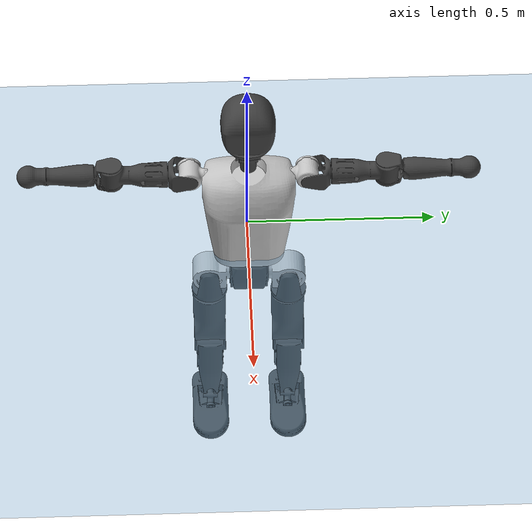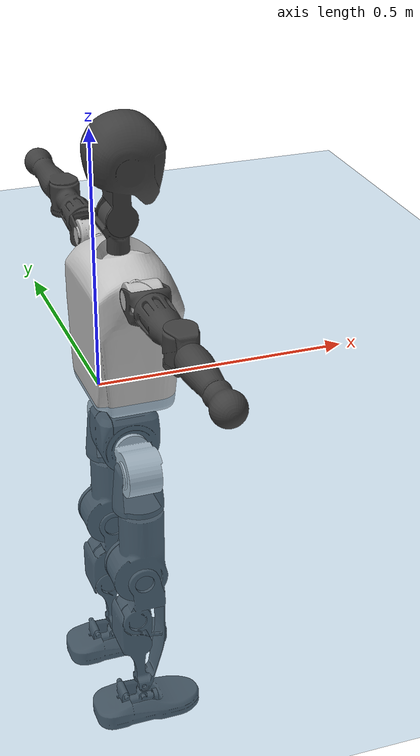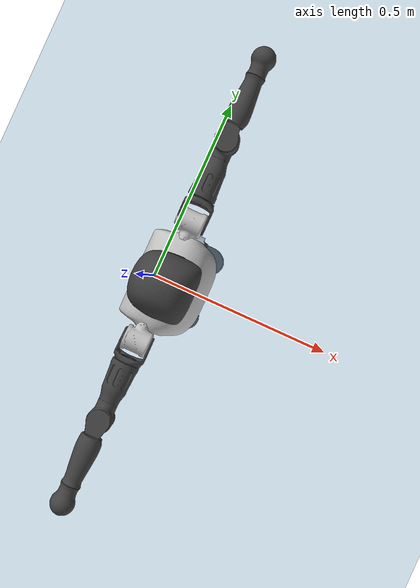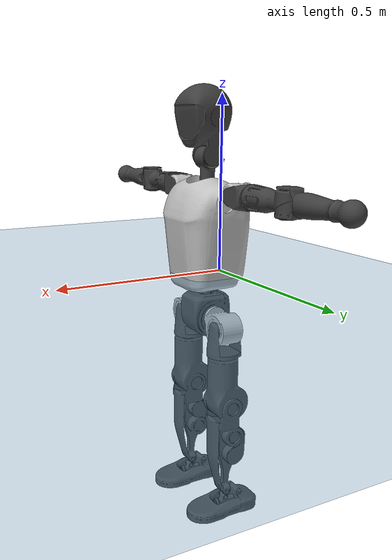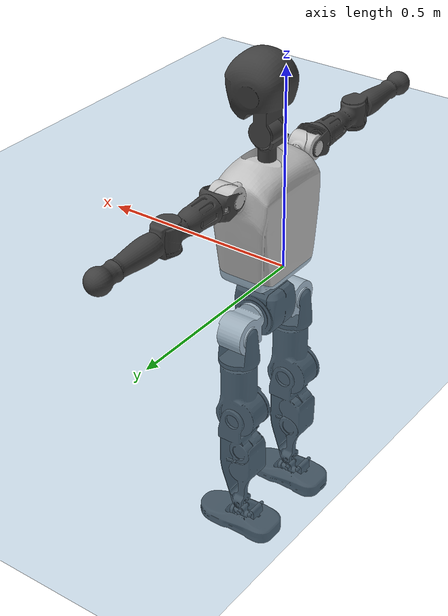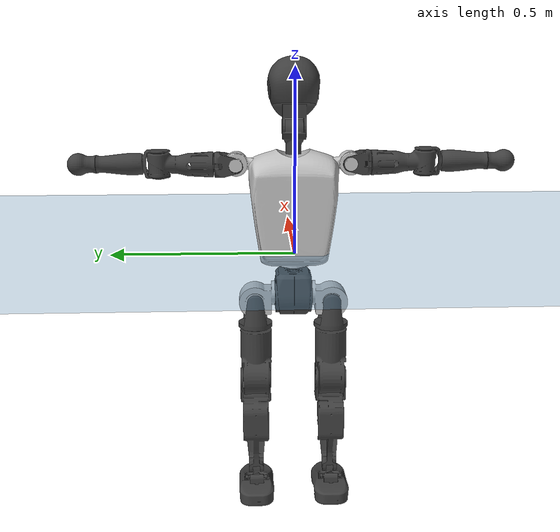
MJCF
<mujoco model="T1">
  <compiler angle="radian" assetdir="assets" balanceinertia="true" inertiafromgeom="false"/>

  <option timestep="0.005" density="1.2" viscosity="2e-05"/>

  <size nkey="1"/>

  <visual>
    <quality shadowsize="8192"/>
    <map shadowclip="0.5"/>
  </visual>

  <default>
    <default class="/">
      <joint armature="0.01" damping="0.01" frictionloss="0.1"/>
      <geom contype="0" conaffinity="0" group="1" solref="-1000 -80"/>
      <site size="0.01 0.005 0.005" group="5"/>
      <general forcelimited="true" biastype="affine" gainprm="25" biasprm="0 -25 -0.6"/>
      <default class="t1">
        <geom rgba="0.25 0.25 0.25 1"/>
        <default class="visual">
          <geom type="mesh" group="2"/>
        </default>
        <default class="collision">
          <geom group="3"/>
        </default>
        <default class="foot">
          <geom size="0.1115 0.05 0.015" type="box" condim="6" group="4" priority="1" solimp="0.015 1 0.015"/>
        </default>
        <default class="reward_collision_sphere">
          <geom group="5" rgba="1 0 0 1"/>
        </default>
      </default>
    </default>
  </default>

  <asset>
    <texture type="skybox" colorspace="auto" name="//unnamed_texture_0" builtin="gradient" rgb1="0.95 0.95 0.95" rgb2="0.95 0.95 0.95" width="100" height="600"/>
    <texture type="2d" colorspace="auto" name="texplane" builtin="checker" rgb1="0.345 0.575 0.748" rgb2="0.345 0.575 0.748" markrgb="1 1 1" width="512" height="512"/>
    <material name="MatPlane" class="/" texture="texplane" texuniform="true" texrepeat="2 2" specular="0.9"/>
    <mesh name="Trunk" class="/" file="Trunk.stl"/>
    <mesh name="H1" class="/" file="H1.stl"/>
    <mesh name="H2" class="/" file="H2.stl"/>
    <mesh name="AL1" class="/" file="AL1.stl"/>
    <mesh name="AL2" class="/" file="AL2.stl"/>
    <mesh name="AL3" class="/" file="AL3.stl"/>
    <mesh name="left_hand_link" class="/" file="left_hand_link.stl"/>
    <mesh name="AR1" class="/" file="AR1.stl"/>
    <mesh name="AR2" class="/" file="AR2.stl"/>
    <mesh name="AR3" class="/" file="AR3.stl"/>
    <mesh name="right_hand_link" class="/" file="right_hand_link.stl"/>
    <mesh name="Waist" class="/" file="Waist.stl"/>
    <mesh name="Hip_Pitch_Left" class="/" file="Hip_Pitch_Left.stl"/>
    <mesh name="Hip_Roll_Left" class="/" file="Hip_Roll_Left.stl"/>
    <mesh name="Hip_Yaw_Left" class="/" file="Hip_Yaw_Left.stl"/>
    <mesh name="Shank_Left" class="/" file="Shank_Left.stl"/>
    <mesh name="Ankle_Cross_Left" class="/" file="Ankle_Cross_Left.stl"/>
    <mesh name="left_foot_link" class="/" file="left_foot_link.stl"/>
    <mesh name="Hip_Pitch_Right" class="/" file="Hip_Pitch_Right.stl"/>
    <mesh name="Hip_Roll_Right" class="/" file="Hip_Roll_Right.stl"/>
    <mesh name="Hip_Yaw_Right" class="/" file="Hip_Yaw_Right.stl"/>
    <mesh name="Shank_Right" class="/" file="Shank_Right.stl"/>
    <mesh name="Ankle_Cross_Right" class="/" file="Ankle_Cross_Right.stl"/>
    <mesh name="right_foot_link" class="/" file="right_foot_link.stl"/>
  </asset>

  <worldbody>
    <geom name="floor" class="/" size="100 100 0.125" type="plane" group="0" material="MatPlane"/>
    <light name="toplight_shadow" class="/" pos="0 0 5" dir="0.0990148 0.0990148 -0.990148" type="directional" ambient="0.04 0.04 0.04" diffuse="0.55 0.55 0.55" specular="0.12 0.12 0.12"/>
    <light name="toplight_fill" class="/" pos="0 0 5" dir="0.0990148 0.0990148 -0.990148" type="directional" castshadow="false" ambient="0.04 0.04 0.04" diffuse="0.3 0.3 0.3" specular="0.08 0.08 0.08"/>
    <body name="trunk" childclass="t1" pos="0.000184346 0.00192006 -0.00271021" quat="0.999999 -0.000217783 -0.00127666 -3.34507e-05">
      <inertial pos="0.0402848 -0.000435034 0.115114" quat="0.999959 -0.000139407 -0.00903653 -0.000696233" mass="9.45478" diaginertia="0.0193543 0.0735826 0.0847438"/>
      <joint name="//unnamed_joint_0" type="free" armature="0" damping="0" frictionloss="0"/>
      <geom name="//unnamed_geom_1" class="visual" rgba="0.76 0.76 0.76 1" mesh="Trunk"/>
      <geom name="//unnamed_geom_2" class="collision" size="0.0708161 0.0944214 0.141632" pos="0.0443526 0 0.131801" type="box"/>
      <geom name="//unnamed_geom_3" class="reward_collision_sphere" size="0.108585" pos="0.0443526 0 0.109834"/>
      <geom name="//unnamed_geom_4" class="reward_collision_sphere" size="0.0141632" pos="0.0443526 0.0845825 0"/>
      <geom name="//unnamed_geom_5" class="reward_collision_sphere" size="0.0141632" pos="0.0443526 -0.0845825 0"/>
      <geom name="//unnamed_geom_6" class="reward_collision_sphere" size="0.0141632" pos="0.0443526 0.106474 0.197702"/>
      <geom name="//unnamed_geom_7" class="reward_collision_sphere" size="0.0141632" pos="0.0443526 -0.106474 0.197702"/>
      <site name="imu" pos="-0.0136189 0.00266017 -0.00148757" size="0.00944214"/>
      <camera name="track" pos="0 -1.99018 0" quat="0.707107 0.707107 0 0" mode="trackcom"/>
      <camera name="ego_camera" pos="0.0901837 0 0.461304" quat="-0.5 -0.5 0.5 0.5"/>
      <body name="H1" pos="0.0470731 -0.000134871 0.268376" quat="0.999999 0.000683928 -0.000949335 0.000818242">
        <inertial pos="0.00112196 -0.00082244 0.0622052" quat="0.763967 -0.0128876 0.00169088 0.645124" mass="0.377342" diaginertia="5.34241e-05 0.000222442 0.00023011"/>
        <joint name="AAHead_yaw" pos="0 0 0" axis="-1.08927e-06 0.00055327 1" range="-1.62061 1.58445" armature="0.00927666" damping="0.00242596" frictionloss="0.0950526"/>
        <geom name="//unnamed_geom_8" class="visual" mesh="H1"/>
        <body name="H2" pos="-7.13943e-05 -0.000910794 0.0696761" quat="0.999999 0.000309282 -0.000636725 0.0011625">
          <inertial pos="0.00494064 1.51686e-05 0.108314" quat="0.988453 0.10606 -0.0747051 -0.0783081" mass="0.514003" diaginertia="0.000436961 0.00182193 0.00275146"/>
          <joint name="Head_pitch" pos="0 0 0" axis="0.0139695 -0.999901 -0.00167566" range="-1.26986 0.404083" armature="0.0107428" damping="0.0193235" frictionloss="0.106963"/>
          <geom name="//unnamed_geom_9" class="visual" mesh="H2"/>
          <geom name="//unnamed_geom_10" class="collision" size="0.0755371" pos="0.0073921 0 0.120818"/>
          <geom name="//unnamed_geom_11" class="reward_collision_sphere" size="0.0849793" pos="0.0147842 0 0.109834"/>
        </body>
      </body>
      <body name="AL1" pos="0.0459751 0.108171 0.242573" quat="1 -0.000320333 0.00051333 0.000241395">
        <inertial pos="-0.00321826 0.0440115 -0.00108444" quat="0.50864 0.50255 -0.500815 0.487764" mass="0.436882" diaginertia="0.000292892 0.0012736 0.000460722"/>
        <joint name="Left_Shoulder_Pitch" pos="0 0 0" axis="-0.000995319 1 7.21844e-05" stiffness="0.00190699" range="-3.2938 1.22088" armature="0.0095891" damping="0.0157251" frictionloss="0.0928434"/>
        <geom name="//unnamed_geom_12" class="visual" rgba="0.76 0.76 0.76 1" mesh="AL1"/>
        <body name="AL2" pos="-0.000316479 0.0490496 -0.00279769" quat="0.999999 -0.000913233 0.000575226 -0.000839535">
          <inertial pos="0.00287508 0.0369605 -0.00288317" quat="0.488574 0.509712 -0.489347 0.511886" mass="0.139686" diaginertia="8.99007e-05 0.000331201 0.000280962"/>
          <joint name="Left_Shoulder_Roll" pos="0 0 0" axis="-0.999925 -0.0119524 0.00250584" range="-1.56477 1.75805" armature="0.00892038" damping="0.00401893" frictionloss="0.0815914"/>
          <geom name="//unnamed_geom_13" class="visual" mesh="AL2"/>
          <body name="AL3" pos="-0.00206487 0.0590891 0.00131727" quat="1 0.000443544 -3.4862e-05 -0.000238728">
            <inertial pos="0.000719806 0.084943 0.0025519" quat="0.705328 0.708881 -0.000712651 0.000126972" mass="0.857327" diaginertia="0.00286757 0.0125411 0.000978978"/>
            <joint name="Left_Elbow_Pitch" pos="0 0 0" axis="0.00434289 -0.999907 -0.0129055" range="-2.29362 2.27155" armature="0.00970222" damping="0.00356337" frictionloss="0.0963247"/>
            <geom name="//unnamed_geom_14" class="visual" mesh="AL3"/>
            <geom name="//unnamed_geom_15" class="collision" size="0.0283264 0.0708161" pos="0 0.0497544 0" quat="0.707105 0.707108 0 0" type="cylinder"/>
            <geom name="//unnamed_geom_16" class="reward_collision_sphere" size="0.0339917"/>
            <body name="left_hand_link" pos="-0.00159774 0.14415 0.0028459" quat="1 -2.53876e-05 -1.03761e-06 -2.3266e-05">
              <inertial pos="0.000103643 0.109825 0.00286408" quat="0.707583 0.706627 -0.00134129 0.00164046" mass="0.282742" diaginertia="0.00179775 0.00840297 0.000355284"/>
              <joint name="Left_Elbow_Yaw" pos="0 0 0" axis="0.0152789 -0.00334683 0.999878" range="-2.4544 0.0136874" armature="0.00880971" damping="0.0125612" frictionloss="0.103105"/>
              <geom name="//unnamed_geom_17" class="visual" mesh="left_hand_link"/>
              <geom name="//unnamed_geom_18" class="collision" size="0.0283264 0.0826187" pos="0 0.129361 0" quat="0.707105 0.707108 0 0" type="cylinder"/>
              <geom name="//unnamed_geom_19" class="reward_collision_sphere" size="0.0472107"/>
              <geom name="//unnamed_geom_20" class="reward_collision_sphere" size="0.0330475" pos="0 0.10946 0"/>
              <geom name="//unnamed_geom_21" class="reward_collision_sphere" size="0.0330475" pos="0 0.213944 0"/>
            </body>
          </body>
        </body>
      </body>
      <body name="AR1" pos="0.0446893 -0.106619 0.24342" quat="0.999999 -0.000947083 0.000214633 0.00077833">
        <inertial pos="-1.15681e-05 -0.0457803 -0.00098121" quat="0.50432 0.496079 -0.501032 0.498532" mass="0.444177" diaginertia="0.000292298 0.00126397 0.000465963"/>
        <joint name="Right_Shoulder_Pitch" pos="0 0 0" axis="-0.000590759 -1 -0.000368494" range="-1.22436 3.34736" armature="0.0098087" damping="0" frictionloss="0.0913723"/>
        <geom name="//unnamed_geom_22" class="visual" rgba="0.76 0.76 0.76 1" mesh="AR1"/>
        <body name="AR2" pos="-0.000770365 -0.046199 0.000269301" quat="0.999999 0.000628736 0.000331676 -0.000748248">
          <inertial pos="0.00246571 -0.0379521 0.00259058" quat="0.512446 0.488628 -0.509399 0.489034" mass="0.12978" diaginertia="9.11347e-05 0.000340249 0.000272002"/>
          <joint name="Right_Shoulder_Roll" pos="0 0 0" axis="-0.999946 0.00397323 0.00956182" range="-1.75447 1.57059" armature="0.00945946" damping="0.0114622" frictionloss="0.107226"/>
          <geom name="//unnamed_geom_23" class="visual" mesh="AR2"/>
          <body name="AR3" pos="-0.00129281 -0.0575563 -8.90376e-06" quat="1 3.82104e-05 -0.000176835 0.000260612">
            <inertial pos="-0.00297124 -0.0844306 -0.000968015" quat="0.711039 0.70308 -0.00560352 -0.00844068" mass="0.876663" diaginertia="0.0027484 0.0119482 0.000990272"/>
            <joint name="Right_Elbow_Pitch" pos="0 0 0" axis="0.0036784 0.999985 -0.00410407" range="-2.26897 2.24387" armature="0.00815343" damping="0.00279175" frictionloss="0.0969771"/>
            <geom name="//unnamed_geom_24" class="visual" mesh="AR3"/>
            <geom name="//unnamed_geom_25" class="collision" size="0.0283264 0.0708161" pos="0 -0.0497544 0" quat="0.707105 0.707108 0 0" type="cylinder"/>
            <geom name="//unnamed_geom_26" class="reward_collision_sphere" size="0.0339917"/>
            <body name="right_hand_link" pos="-0.000357418 -0.146865 0.00268318" quat="1 7.03001e-07 6.73774e-06 7.69971e-06">
              <inertial pos="-0.0021955 -0.106424 0.00148937" quat="0.706292 0.707914 0.00207311 0.00223543" mass="0.273282" diaginertia="0.00178182 0.00782955 0.000343566"/>
              <joint name="Right_Elbow_Yaw" pos="0 0 0" axis="-0.000609066 -0.00443664 0.99999" range="0.00732422 2.44297" armature="0.00955655" damping="0.00648579" frictionloss="0.0942191"/>
              <geom name="//unnamed_geom_27" class="visual" mesh="right_hand_link"/>
              <geom name="//unnamed_geom_28" class="collision" size="0.0283264 0.0826187" pos="0 -0.129361 0" quat="0.707105 0.707108 0 0" type="cylinder"/>
              <geom name="//unnamed_geom_29" class="reward_collision_sphere" size="0.0472107"/>
              <geom name="//unnamed_geom_30" class="reward_collision_sphere" size="0.0330475" pos="0 -0.10946 0"/>
              <geom name="//unnamed_geom_31" class="reward_collision_sphere" size="0.0330475" pos="0 -0.213944 0"/>
            </body>
          </body>
        </body>
      </body>
      <body name="Waist" pos="0.0483565 0.000770715 -0.124762" quat="1 0.000130819 -0.000115177 -5.24776e-05">
        <inertial pos="0.00340405 0.000180022 0.00849609" quat="0.983866 0.000718401 -0.178832 0.00514834" mass="2.15063" diaginertia="0.00114387 0.00527696 0.00733019"/>
        <joint name="Waist" pos="0 0 0" axis="0.00529047 0.00207463 0.999984" range="-1.6167 1.59315" armature="0.00950906" damping="0" frictionloss="0.0959053"/>
        <geom name="//unnamed_geom_32" class="visual" mesh="Waist"/>
        <body name="Hip_Pitch_Left" pos="-0.000156616 0.108046 0.00281579" quat="1 8.31809e-05 2.54636e-05 -7.50893e-05">
          <inertial pos="-0.000857449 -0.00716782 -0.0226286" quat="0.975321 0.219976 0.0189314 0.00098007" mass="0.889735" diaginertia="0.000407934 0.00142815 0.00197858"/>
          <joint name="Left_Hip_Pitch" pos="0 0 0" axis="0.00110995 0.999991 0.00406896" range="-1.7469 1.58016" armature="0.00948851" damping="0" frictionloss="0.081915"/>
          <geom name="//unnamed_geom_33" class="visual" rgba="0.76 0.76 0.76 1" mesh="Hip_Pitch_Left"/>
          <body name="Hip_Roll_Left" pos="0.00201504 -0.000704866 -0.0207711" quat="1 -3.28078e-06 2.08825e-05 1.23969e-05">
            <inertial pos="0.000234668 0.00116651 -0.0593193" quat="0.705806 -0.00369783 -0.00480217 0.708379" mass="0.334729" diaginertia="0.00040106 0.00155207 0.000852181"/>
            <joint name="Left_Hip_Roll" pos="0 0 0" axis="-0.999994 -0.00295942 0.00168347" range="-1.52227 0.203172" armature="0.00941593" damping="0.0205414" frictionloss="0.083863"/>
            <geom name="//unnamed_geom_34" class="visual" mesh="Hip_Roll_Left"/>
            <geom name="//unnamed_geom_35" class="reward_collision_sphere" size="0.0519318"/>
            <body name="Hip_Yaw_Left" pos="-0.000964486 -0.00153042 -0.0877454" quat="1 4.2345e-05 -4.08752e-05 -2.88855e-05">
              <inertial pos="-0.00595586 0.000364105 -0.100974" quat="0.697321 -0.0346944 -0.031294 0.715234" mass="1.78708" diaginertia="0.0058909 0.0246968 0.00417498"/>
              <joint name="Left_Hip_Yaw" pos="0 0 0" axis="-0.000760764 -0.00924603 -0.999957" range="-1.0175 1.05594" armature="0.00835525" damping="0" frictionloss="0.0815431"/>
              <geom name="//unnamed_geom_36" class="visual" mesh="Hip_Yaw_Left"/>
              <geom name="//unnamed_geom_37" class="collision" size="0.0472107 0.0755371" type="cylinder"/>
              <body name="Shank_Left" pos="-0.0104404 0.00265136 -0.145081" quat="0.999999 0.00072975 -0.000379891 0.00105497">
                <inertial pos="-0.00338992 -0.00207174 -0.136662" quat="0.997436 0.0150434 -0.0248202 0.065411" mass="1.46468" diaginertia="0.00800072 0.034144 0.00301784"/>
                <joint name="Left_Knee_Pitch" pos="0 0 0" axis="0.0119242 0.999928 -0.000962945" range="0.0144855 2.3429" armature="0.0105175" damping="0.0150861" frictionloss="0.0816077"/>
                <geom name="//unnamed_geom_38" class="visual" mesh="Shank_Left"/>
                <geom name="//unnamed_geom_39" class="collision" size="0.0472107 0.0708161" pos="0 0 -0.131801" type="cylinder"/>
                <geom name="//unnamed_geom_40" class="reward_collision_sphere" size="0.0613739"/>
                <body name="Ankle_Cross_Left" pos="-0.00292443 -0.000279758 -0.30785" quat="1 1.38569e-05 1.15547e-05 -9.42629e-06">
                  <inertial pos="-0.00318209 0.000239738 -0.00858835" quat="0.453416 0.551781 0.542613 0.44218" mass="0.0607808" diaginertia="6.42033e-06 2.50937e-05 1.79704e-05"/>
                  <joint name="Left_Ankle_Pitch" pos="0 0 0" axis="0.0059265 0.99998 0.00224381" range="-0.873822 0.294643" armature="0.00939828" damping="0.0135833" frictionloss="0.0922241"/>
                  <geom name="//unnamed_geom_41" class="visual" mesh="Ankle_Cross_Left"/>
                  <body name="left_foot_link" pos="0.00182576 0.00035415 -0.0132724" quat="1 -0.000598128 0.000404207 0.00037949">
                    <inertial pos="3.58734e-05 -8.24317e-05 -0.0074481" quat="0.0001983 0.620063 -0.000678188 0.784552" mass="0.564252" diaginertia="0.000579522 0.00233347 0.00344709"/>
                    <joint name="Left_Ankle_Roll" pos="0 0 0" axis="-0.999939 -0.0106281 0.00302886" range="-0.486568 0.452605" armature="0.00934701" damping="0.0222271" frictionloss="0.0937628"/>
                    <geom name="//unnamed_geom_42" class="visual" mesh="left_foot_link"/>
                    <geom name="left_foot" class="foot" size="0.114068 0.0519879 0.0150612" pos="0.0073921 0 -0.0164752"/>
                    <geom name="//unnamed_geom_44" class="reward_collision_sphere" size="0.0490991" pos="0.0073921 0 -0.0164752"/>
                    <geom name="//unnamed_geom_45" class="reward_collision_sphere" size="0.0283264" pos="0.070225 -0.022887 -0.0164752"/>
                    <geom name="//unnamed_geom_46" class="reward_collision_sphere" size="0.0283264" pos="-0.0517447 -0.022887 -0.0164752"/>
                    <site name="left_foot" class="foot" pos="0.0073921 0 -0.0164752" size="0.00944214"/>
                  </body>
                </body>
              </body>
            </body>
          </body>
        </body>
        <body name="Hip_Pitch_Right" pos="-0.00339004 -0.106839 0.00245019" quat="0.999999 0.000909809 -3.92412e-05 -0.000672294">
          <inertial pos="-0.000149549 0.00497959 -0.020699" quat="0.97299 -0.230296 0.0153381 -0.00432783" mass="0.851864" diaginertia="0.000390793 0.00141019 0.00200494"/>
          <joint name="Right_Hip_Pitch" pos="0 0 0" axis="-0.00188225 -0.999998 1.30385e-05" range="-1.53474 1.74486" armature="0.00930709" damping="0.0161068" frictionloss="0.107046"/>
          <geom name="//unnamed_geom_47" class="visual" rgba="0.76 0.76 0.76 1" mesh="Hip_Pitch_Right"/>
          <body name="Hip_Roll_Right" pos="-0.00311024 0.000596895 -0.0195373" quat="1 0.000445915 -3.14002e-05 -7.3734e-05">
            <inertial pos="0.00164918 -0.000403286 -0.0580719" quat="0.707362 -0.00650158 -0.00607378 0.706795" mass="0.324219" diaginertia="0.000372793 0.00147903 0.000818639"/>
            <joint name="Right_Hip_Roll" pos="0 0 0" axis="-0.999938 0.0103577 -0.00410577" range="-0.161297 1.568" armature="0.00930837" damping="0.00528794" frictionloss="0.106719"/>
            <geom name="//unnamed_geom_48" class="visual" mesh="Hip_Roll_Right"/>
            <geom name="//unnamed_geom_49" class="reward_collision_sphere" size="0.0519318"/>
            <body name="Hip_Yaw_Right" pos="0.00236852 -0.000960184 -0.0877545" quat="1 0.000112352 -0.000298303 -2.08389e-05">
              <inertial pos="-0.00734239 0.00219253 -0.0991567" quat="0.71545 -0.0296119 -0.0337414 0.69722" mass="1.77109" diaginertia="0.00569281 0.0238146 0.00400691"/>
              <joint name="Right_Hip_Yaw" pos="0 0 0" axis="-0.00433951 -0.00269337 -0.999987" stiffness="0.00079213" range="-1.01796 1.00324" armature="0.00935193" damping="0.0200456" frictionloss="0.0948054"/>
              <geom name="//unnamed_geom_50" class="visual" mesh="Hip_Yaw_Right"/>
              <geom name="//unnamed_geom_51" class="collision" size="0.0472107 0.0755371" type="cylinder"/>
              <body name="Shank_Right" pos="-0.00849961 7.81411e-06 -0.144857" quat="1 -5.34782e-05 -0.000214138 -0.000129149">
                <inertial pos="-0.00688133 -0.000600476 -0.136877" quat="0.998717 0.00376882 -0.027638 -0.0422701" mass="1.4945" diaginertia="0.00760156 0.0339362 0.00304456"/>
                <joint name="Right_Knee_Pitch" pos="0 0 0" axis="-0.00373433 -0.999991 0.00221259" range="-2.33617 -0.0569441" armature="0.00965713" damping="0.00855243" frictionloss="0.0842738"/>
                <geom name="//unnamed_geom_52" class="visual" mesh="Shank_Right"/>
                <geom name="//unnamed_geom_53" class="collision" size="0.0472107 0.0708161" pos="0 0 -0.131801" type="cylinder"/>
                <geom name="//unnamed_geom_54" class="reward_collision_sphere" size="0.0613739"/>
                <body name="Ankle_Cross_Right" pos="-0.000874867 -0.00156755 -0.310569" quat="1 6.68695e-05 0.00012009 -2.6145e-05">
                  <inertial pos="-0.00309533 -0.000906819 -0.00855583" quat="0.439383 0.548336 0.553037 0.447682" mass="0.0608443" diaginertia="6.46689e-06 2.5537e-05 1.83269e-05"/>
                  <joint name="Right_Ankle_Pitch" pos="0 0 0" axis="-0.000642287 -0.999999 -0.0013316" range="-0.302544 0.905514" armature="0.0100223" damping="0.00552087" frictionloss="0.0931537"/>
                  <geom name="//unnamed_geom_55" class="visual" mesh="Ankle_Cross_Right"/>
                  <body name="right_foot_link" pos="0.00150164 -4.86667e-05 -0.0119793" quat="1 5.70099e-06 -0.000289449 9.82846e-05">
                    <inertial pos="-0.000156205 -0.000260645 -0.00739536" quat="-0.00106198 0.617036 -0.00132594 0.786933" mass="0.582709" diaginertia="0.000591285 0.00226587 0.00351642"/>
                    <joint name="Right_Ankle_Roll" pos="0 0 0" axis="-1 0.000252508 -0.000432942" range="-0.423058 0.448684" armature="0.00890232" damping="0.00539012" frictionloss="0.10586"/>
                    <geom name="//unnamed_geom_56" class="visual" mesh="right_foot_link"/>
                    <geom name="right_foot" class="foot" size="0.102133 0.0415477 0.015611" pos="0.0073921 0 -0.0164752"/>
                    <geom name="//unnamed_geom_58" class="reward_collision_sphere" size="0.0377686"/>
                    <geom name="//unnamed_geom_59" class="reward_collision_sphere" size="0.0283264" pos="0.0073921 0 -0.0164752"/>
                    <geom name="//unnamed_geom_60" class="reward_collision_sphere" size="0.0283264" pos="0.070225 0.022887 -0.0164752"/>
                    <geom name="//unnamed_geom_61" class="reward_collision_sphere" size="0.0283264" pos="-0.0517447 0.022887 -0.0164752"/>
                    <site name="right_foot" class="foot" pos="0.0073921 0 -0.0164752" size="0.00944214"/>
                  </body>
                </body>
              </body>
            </body>
          </body>
        </body>
      </body>
    </body>
  </worldbody>

  <contact>
    <pair class="/" geom1="floor" geom2="left_foot" name="//unnamed_contact_0"/>
    <pair class="/" geom1="floor" geom2="right_foot" name="//unnamed_contact_1"/>
  </contact>

  <actuator>
    <general name="AAHead_yaw" class="/" joint="AAHead_yaw" forcerange="-6.5676 6.5676" gainprm="25.0961" biasprm="0 -25.0961 -0.557387"/>
    <general name="Head_pitch" class="/" joint="Head_pitch" forcerange="-6.7843 6.7843" gainprm="25.0961" biasprm="0 -25.0961 -0.557387"/>
    <general name="Left_Shoulder_Pitch" class="/" joint="Left_Shoulder_Pitch" forcerange="-16.5363 16.5363" gainprm="25.0961" biasprm="0 -25.0961 -0.557387"/>
    <general name="Left_Shoulder_Roll" class="/" joint="Left_Shoulder_Roll" forcerange="-16.3828 16.3828" gainprm="25.0961" biasprm="0 -25.0961 -0.557387"/>
    <general name="Left_Elbow_Pitch" class="/" joint="Left_Elbow_Pitch" forcerange="-15.3884 15.3884" gainprm="25.0961" biasprm="0 -25.0961 -0.557387"/>
    <general name="Left_Elbow_Yaw" class="/" joint="Left_Elbow_Yaw" forcerange="-17.1241 17.1241" gainprm="25.0961" biasprm="0 -25.0961 -0.557387"/>
    <general name="Right_Shoulder_Pitch" class="/" joint="Right_Shoulder_Pitch" forcerange="-16.398 16.398" gainprm="25.0961" biasprm="0 -25.0961 -0.557387"/>
    <general name="Right_Shoulder_Roll" class="/" joint="Right_Shoulder_Roll" forcerange="-18.0549 18.0549" gainprm="25.0961" biasprm="0 -25.0961 -0.557387"/>
    <general name="Right_Elbow_Pitch" class="/" joint="Right_Elbow_Pitch" forcerange="-17.1838 17.1838" gainprm="25.0961" biasprm="0 -25.0961 -0.557387"/>
    <general name="Right_Elbow_Yaw" class="/" joint="Right_Elbow_Yaw" forcerange="-17.0842 17.0842" gainprm="25.0961" biasprm="0 -25.0961 -0.557387"/>
    <general name="Waist" class="/" joint="Waist" forcerange="-28.1007 28.1007" gainprm="25.0961" biasprm="0 -25.0961 -0.557387"/>
    <general name="Left_Hip_Pitch" class="/" joint="Left_Hip_Pitch" forcerange="-41.8183 41.8183" gainprm="25.0961" biasprm="0 -25.0961 -0.557387"/>
    <general name="Left_Hip_Roll" class="/" joint="Left_Hip_Roll" forcerange="-31.1757 31.1757" gainprm="25.0961" biasprm="0 -25.0961 -0.557387"/>
    <general name="Left_Hip_Yaw" class="/" joint="Left_Hip_Yaw" forcerange="-26.526 26.526" gainprm="25.0961" biasprm="0 -25.0961 -0.557387"/>
    <general name="Left_Knee_Pitch" class="/" joint="Left_Knee_Pitch" forcerange="-61.9545 61.9545" gainprm="25.0961" biasprm="0 -25.0961 -0.557387"/>
    <general name="Left_Ankle_Pitch" class="/" joint="Left_Ankle_Pitch" forcerange="-17.7129 17.7129" gainprm="25.0961" biasprm="0 -25.0961 -0.557387"/>
    <general name="Left_Ankle_Roll" class="/" joint="Left_Ankle_Roll" forcerange="-13.4611 13.4611" gainprm="25.0961" biasprm="0 -25.0961 -0.557387"/>
    <general name="Right_Hip_Pitch" class="/" joint="Right_Hip_Pitch" forcerange="-38.1999 38.1999" gainprm="25.0961" biasprm="0 -25.0961 -0.557387"/>
    <general name="Right_Hip_Roll" class="/" joint="Right_Hip_Roll" forcerange="-29.0494 29.0494" gainprm="25.0961" biasprm="0 -25.0961 -0.557387"/>
    <general name="Right_Hip_Yaw" class="/" joint="Right_Hip_Yaw" forcerange="-30.4201 30.4201" gainprm="25.0961" biasprm="0 -25.0961 -0.557387"/>
    <general name="Right_Knee_Pitch" class="/" joint="Right_Knee_Pitch" forcerange="-55.9679 55.9679" gainprm="25.0961" biasprm="0 -25.0961 -0.557387"/>
    <general name="Right_Ankle_Pitch" class="/" joint="Right_Ankle_Pitch" forcerange="-18.5922 18.5922" gainprm="25.0961" biasprm="0 -25.0961 -0.557387"/>
    <general name="Right_Ankle_Roll" class="/" joint="Right_Ankle_Roll" forcerange="-14.1875 14.1875" gainprm="25.0961" biasprm="0 -25.0961 -0.557387"/>
  </actuator>

  <sensor>
    <gyro site="imu" name="imu_angular_velocity"/>
    <velocimeter site="imu" name="imu_linear_velocity"/>
    <framelinvel objtype="site" objname="left_foot" name="left_foot_global_linear_velocity"/>
    <framelinvel objtype="site" objname="right_foot" name="right_foot_global_linear_velocity"/>
  </sensor>

  <keyframe>
    <key name="home" qpos="0 0 0.6385 1 0 0 0 0 0 0 1.4 0 -0.4 0 -1.4 0 0.4 0 -0.4 0 0 0.8 -0.4 0 0.4 0 0 -0.8 0.4 0"/>
  </keyframe>
</mujoco>
